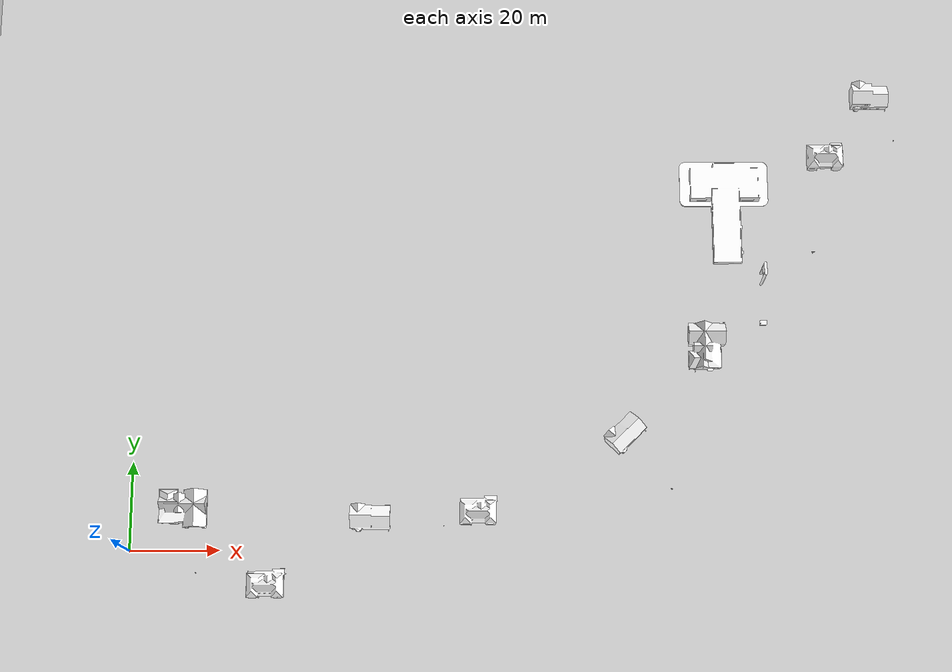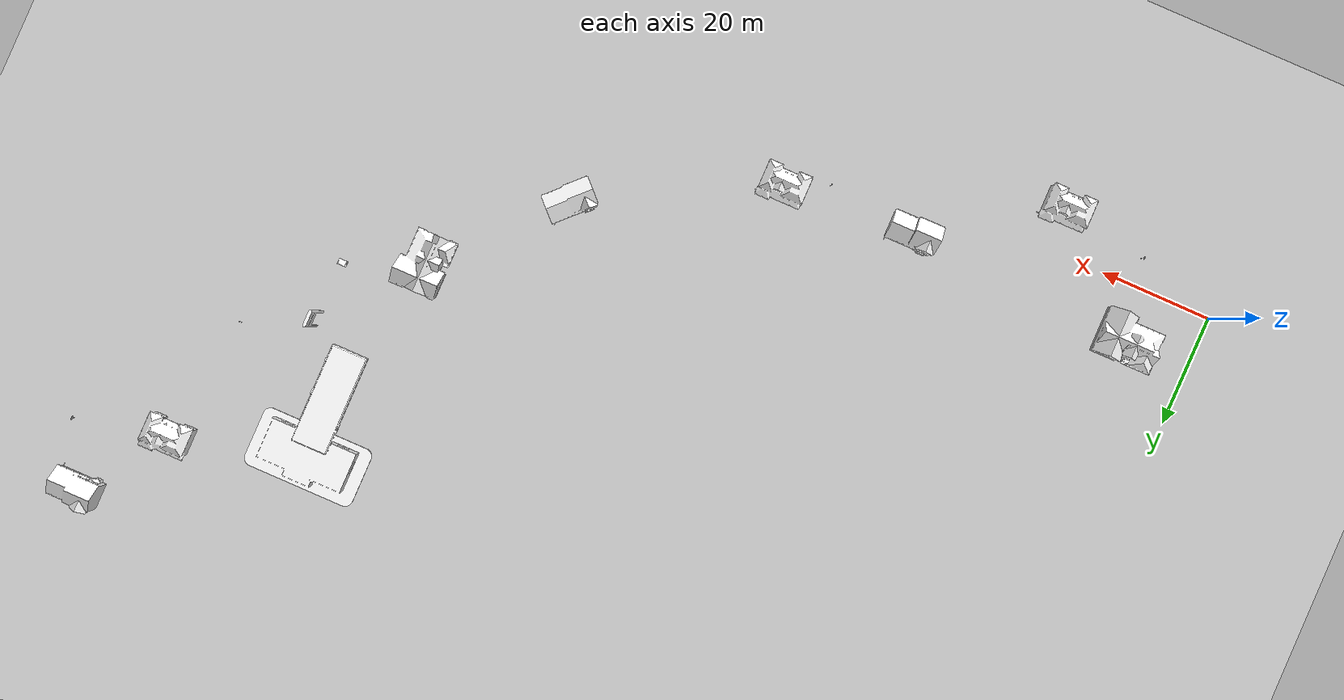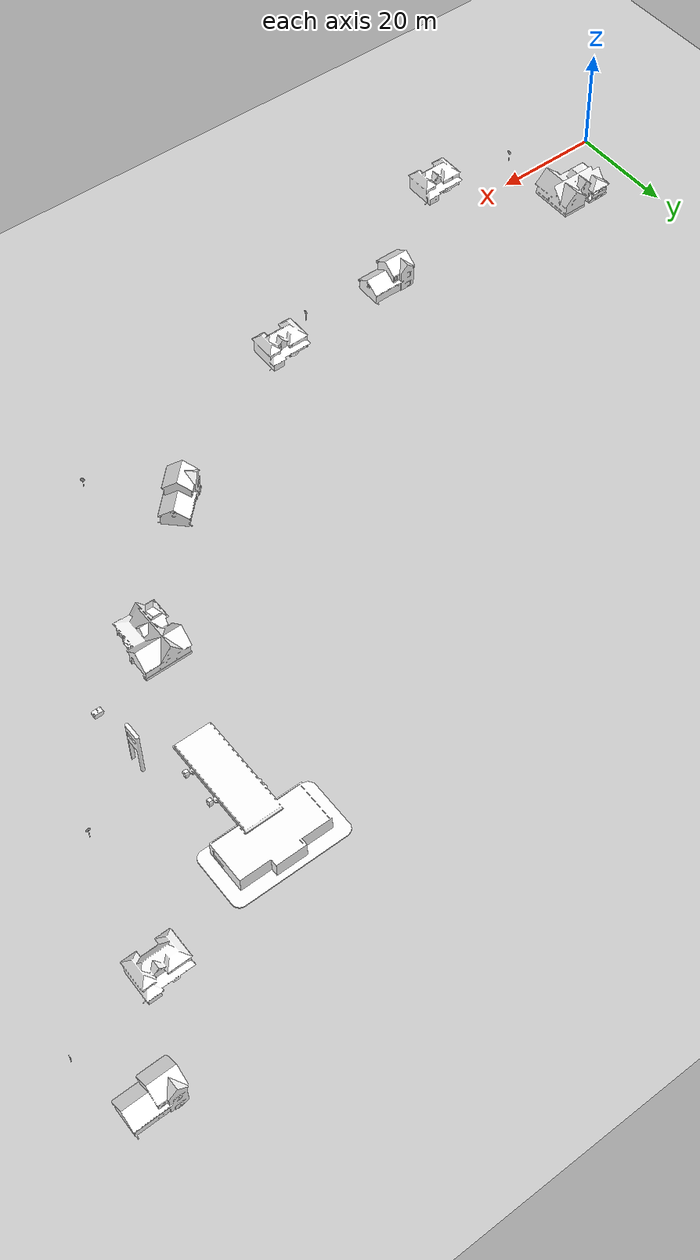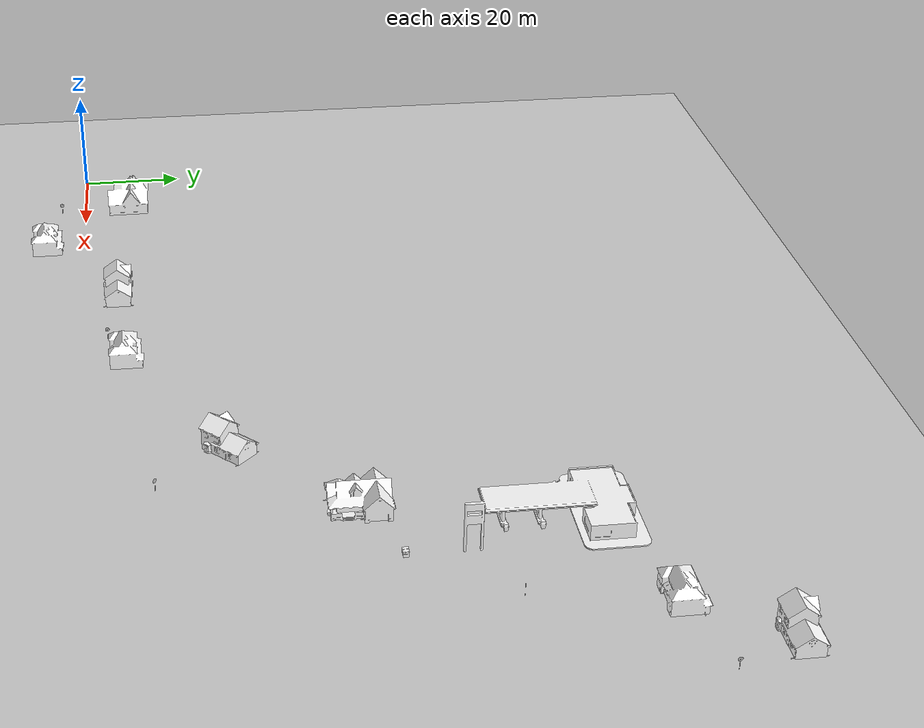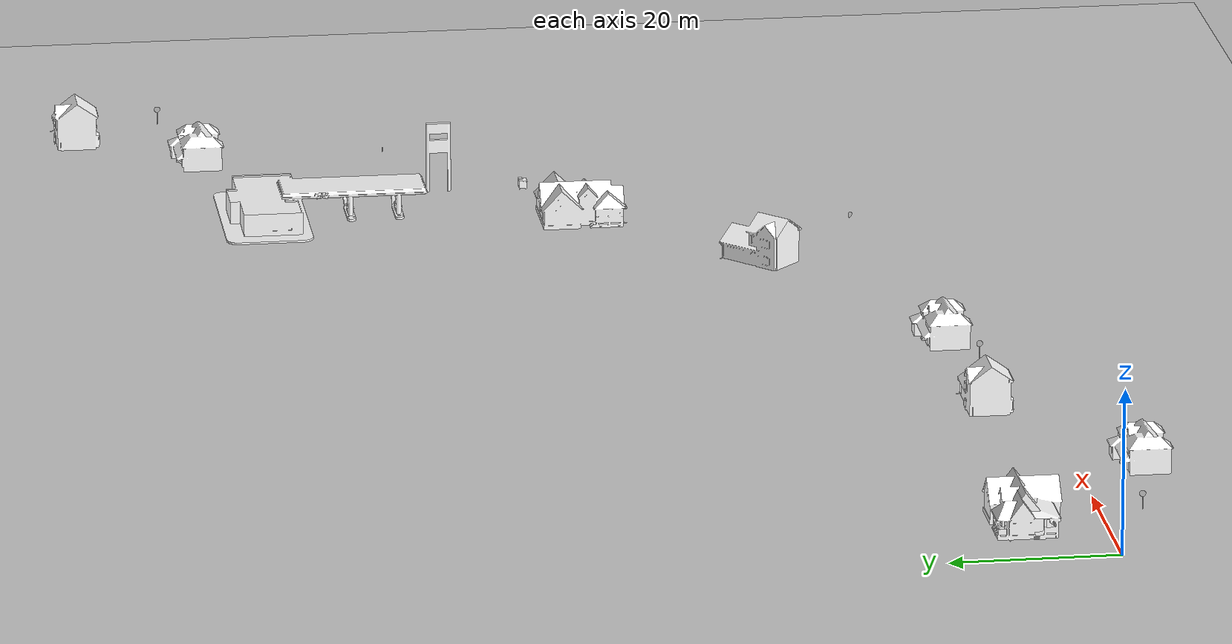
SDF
<sdf version="1.4">
 <world name="vrc_task_1">
  <model name="ground_plane">
   <static>1</static>
   <link name="link">
    <collision name="collision">
     <geometry><plane><normal>0 0 1</normal><size>100 100</size></plane></geometry>
     <surface><friction><ode><mu>100</mu><mu2>50</mu2></ode></friction></surface>
    </collision>
    <visual name="visual">
     <cast_shadows>0</cast_shadows>
     <geometry><plane><normal>0 0 1</normal><size>1000 1000</size></plane></geometry>
     <material>
      <script><uri>file://media/materials/scripts/gazebo.material</uri><name>Gazebo/Grey</name></script>
     </material>
    </visual>
    <velocity_decay><linear>0</linear><angular>0</angular></velocity_decay>
   </link>
  </model>
  <scene><ambient>0.2 0.2 0.2 1.0</ambient><grid>false</grid></scene>
  <physics type="ode">
   <gravity>0 0 -9.81</gravity>
   <ode>
    <solver><type>quick</type><iters>50</iters><sor>1.4</sor></solver>
    <constraints>
     <cfm>0.0</cfm>
     <erp>0.2</erp>
     <contact_max_correcting_vel>100.0</contact_max_correcting_vel>
     <contact_surface_layer>0.0</contact_surface_layer>
    </constraints>
   </ode>
   <real_time_update_rate>1000</real_time_update_rate>
   <max_step_size>0.001</max_step_size>
  </physics>
  <light type="directional" name="sun">
   <cast_shadows>false</cast_shadows>
   <pose>0 0 100 0 0 0</pose>
   <diffuse>0.8 0.8 0.8 1</diffuse>
   <specular>0.9 0.9 0.9 1</specular>
   <attenuation>
    <range>1000</range>
    <constant>0.9</constant>
    <linear>0.01</linear>
    <quadratic>0.001</quadratic>
   </attenuation>
   <direction>0.2 0.2 -0.9</direction>
  </light>
  <light type="point" name="light_bulb">
   <cast_shadows>false</cast_shadows>
   <pose>-14 0 5 0 0 0</pose>
   <diffuse>0.3 0.3 0.3 1</diffuse>
   <specular>0.0 0.0 0.0 1</specular>
   <attenuation>
    <range>80</range>
    <constant>0.9</constant>
    <linear>0.01</linear>
    <quadratic>0.001</quadratic>
   </attenuation>
  </light>
  <include>
   <uri>model://speed_limit_sign</uri>
   <name>speed_sign_1</name>
   <static>true</static>
   <pose>15 -5 0 0 0 1.5707</pose>
  </include>
  <include>
   <uri>model://speed_limit_sign</uri>
   <name>speed_sign_2</name>
   <static>true</static>
   <pose>70 5 0 0 0 1.5707</pose>
  </include>
  <include>
   <uri>model://speed_limit_sign</uri>
   <name>speed_sign_3</name>
   <static>true</static>
   <pose>121 13 0 0 0 2.356</pose>
  </include>
  <include>
   <uri>model://speed_limit_sign</uri>
   <name>speed_sign_4</name>
   <static>true</static>
   <pose>155 68 0 0 0 3.1415</pose>
  </include>
  <include>
   <uri>model://speed_limit_sign</uri>
   <name>speed_sign_5</name>
   <static>true</static>
   <pose>175 95 0 0 0 1.5707</pose>
  </include>
  <include><uri>model://house_1</uri><pose>12 9.5 0 0 0 0</pose></include>
  <include><uri>model://house_1</uri><name>house_1_b</name><pose>129.5 46 0 0 0 1.5707</pose></include>
  <include><uri>model://house_2</uri><pose>30 -8 0 0 0 0</pose></include>
  <include><uri>model://house_2</uri><name>house_2_b</name><pose>77 8 0 0 0 0</pose></include>
  <include><uri>model://house_2</uri><name>house_2_c</name><pose>158 91 0 0 0 0</pose></include>
  <include><uri>model://house_3</uri><pose>54 7 0 0 0 0</pose></include>
  <include><uri>model://house_3</uri><name>house_3_b</name><pose>111 26 0 0 0 .78539</pose></include>
  <include><uri>model://house_3</uri><name>house_3_c</name><pose>170 106 0 0 0 0</pose></include>
  <include><uri>model://dumpster</uri><static>true</static><pose>143 51.5 0 0 0 0</pose></include>
  <include><uri>model://gas_station</uri><static>true</static><pose>135 84.8 0 0 0 0</pose></include>
  <model name="road_boxes">
   <static>true</static>
   <link name="link">
    <collision name="collision_1">
     <pose>51 0 0 0 0 0</pose>
     <geometry><box><size>102 7.34 0.02</size></box></geometry>
     <surface><friction><ode><mu>100</mu><mu2>50</mu2></ode></friction></surface>
    </collision>
    <collision name="collision_2">
     <pose>125 25 0 0 0 0.78539</pose>
     <geometry><box><size>72 7.34 0.02</size></box></geometry>
     <surface><friction><ode><mu>100</mu><mu2>50</mu2></ode></friction></surface>
    </collision>
    <collision name="collision_3">
     <pose>150 75 0 0 0 0</pose>
     <geometry><box><size>7.34 53 0.02</size></box></geometry>
     <surface><friction><ode><mu>100</mu><mu2>50</mu2></ode></friction></surface>
    </collision>
    <collision name="collision_4">
     <pose>173.5 100 0 0 0 0</pose>
     <geometry><box><size>54.5 7.34 0.02</size></box></geometry>
     <surface><friction><ode><mu>100</mu><mu2>50</mu2></ode></friction></surface>
    </collision>
    <collision name="collision_5">
     <pose>198 106 0 0 0 0</pose>
     <geometry><box><size>6 5 0.02</size></box></geometry>
     <surface><friction><ode><mu>100</mu><mu2>50</mu2></ode></friction></surface>
    </collision>
   </link>
  </model>
 </world>
</sdf>

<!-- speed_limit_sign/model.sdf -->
<sdf version="1.5">
  <model name="Speed limit">
    <static>true</static>
    <link name="link">
      <collision name="collision">
        <geometry>
          <mesh>
            <scale>10 10 10</scale>
            <uri>model://speed_limit_sign/meshes/speed_limit_sign.dae</uri>
          </mesh>
        </geometry>
      </collision>
      <visual name="visual">
        <geometry>
          <mesh>
            <scale>10 10 10</scale>
            <uri>model://speed_limit_sign/meshes/speed_limit_sign.dae</uri>
          </mesh>
        </geometry>
      </visual>
    </link>
  </model>
</sdf>

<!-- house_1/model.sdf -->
<sdf version="1.5">
  <model name="House 1">
    <static>true</static>
    <link name="link">
      <collision name="collision">
        <geometry>
          <mesh>
            <uri>model://house_1/meshes/house_1.dae</uri>
          </mesh>
        </geometry>
      </collision>
      <visual name="visual">
        <geometry>
          <mesh>
            <uri>model://house_1/meshes/house_1.dae</uri>
          </mesh>
        </geometry>
        <material>
          <script>
            <uri>model://house_1/materials/scripts</uri>
            <uri>model://house_1/materials/textures</uri>
            <name>House_1/Diffuse</name>
          </script>
          <shader type="normal_map_object_space">
            <normal_map>House_1_Normal.png</normal_map>
          </shader>
        </material>
      </visual>
    </link>
  </model>
</sdf>

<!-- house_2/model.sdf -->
<sdf version="1.5">
  <model name="House 2">
    <static>true</static>
    <link name="link">
      <collision name="collision">
        <geometry>
          <mesh>
            <uri>model://house_2/meshes/house_2.dae</uri>
          </mesh>
        </geometry>
      </collision>
      <visual name="visual">
        <geometry>
          <mesh>
            <uri>model://house_2/meshes/house_2.dae</uri>
          </mesh>
        </geometry>
        <material>
          <script>
            <uri>model://house_2/materials/scripts</uri>
            <uri>model://house_2/materials/textures</uri>
            <uri>model://house_1/materials/textures</uri>
            <name>House_2/Diffuse</name>
          </script>
          <shader type="normal_map_object_space">
            <normal_map>model://house_1/materials/textures/House_1_Normal.png</normal_map>
          </shader>
        </material>
      </visual>
    </link>
  </model>
</sdf>

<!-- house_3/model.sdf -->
<sdf version="1.5">
  <model name="House 3">
    <static>true</static>
    <link name="link">
      <collision name="collision">
        <geometry>
          <mesh>
            <uri>model://house_3/meshes/house_3.dae</uri>
          </mesh>
        </geometry>
      </collision>
      <visual name="visual">
        <geometry>
          <mesh>
            <uri>model://house_3/meshes/house_3.dae</uri>
          </mesh>
        </geometry>
        <material>
          <script>
            <uri>model://house_3/materials/scripts</uri>
            <uri>model://house_3/materials/textures</uri>
            <uri>model://house_1/materials/textures</uri>
            <name>House_3/Diffuse</name>
          </script>
          <shader type="normal_map_object_space">
            <normal_map>model://house_1/materials/textures/House_1_Normal.png</normal_map>
          </shader>
        </material>
      </visual>
    </link>
  </model>
</sdf>

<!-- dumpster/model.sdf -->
<sdf version="1.5">
  <model name="Dumpster">
    <link name="link">
      <collision name="collision">
        <geometry>
          <mesh>
            <uri>model://dumpster/meshes/dumpster.dae</uri>
          </mesh>
        </geometry>
      </collision>
      <visual name="visual">
        <geometry>
          <mesh>
            <uri>model://dumpster/meshes/dumpster.dae</uri>
          </mesh>
        </geometry>
        <material>
          <script>
            <uri>model://dumpster/materials/scripts</uri>
            <uri>model://dumpster/materials/textures</uri>
            <name>Dumpster/Diffuse</name>
          </script>
        </material>
      </visual>
    </link>
  </model>
</sdf>

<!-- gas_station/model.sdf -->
<sdf version="1.5">
  <model name="Gas Station">
    <static>true</static>
    <link name="link">
      <pose>0 0 0 0 0 0</pose>
      <collision name="collision">
        <geometry>
          <mesh>
            <uri>model://gas_station/meshes/gas_station.dae</uri>
          </mesh>
        </geometry>
      </collision>
      <visual name="visual">
        <geometry>
          <mesh>
            <uri>model://gas_station/meshes/gas_station.dae</uri>
          </mesh>
        </geometry>
        <material>
          <script>
            <uri>model://gas_station/materials/scripts</uri>
            <uri>model://gas_station/materials/textures</uri>
            <name>GasStation/Diffuse</name>
          </script>
          <shader type="normal_map_object_space">
            <normal_map>GasStation_Normal.png</normal_map>
          </shader>
        </material>
      </visual>
    </link>
  </model>
</sdf>
